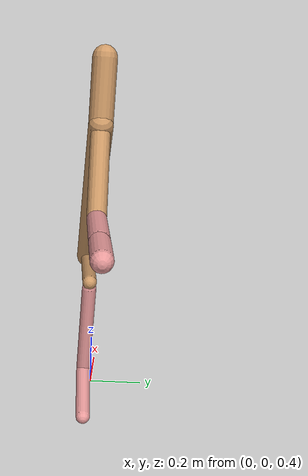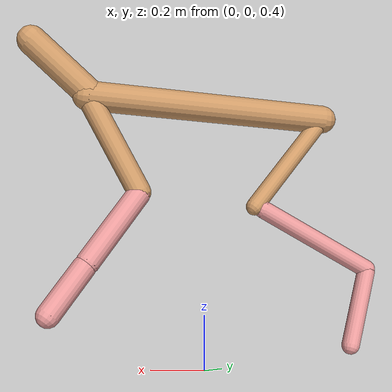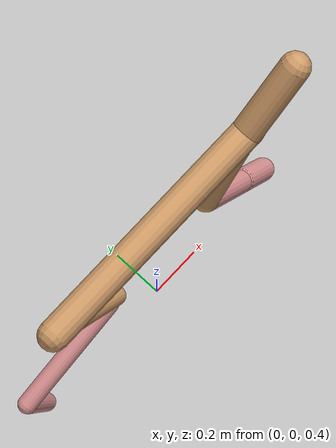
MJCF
<mujoco model="cheetah">
  <compiler angle="radian" coordinate="local" inertiafromgeom="true" settotalmass="14" />
  <default>
    <joint armature=".1" damping=".01" limited="true" solimplimit="0 .8 .03" solreflimit=".02 1" stiffness="8" />
    <geom conaffinity="0" condim="3" contype="1" friction="0.8 .1 .1" rgba="0.8 0.6 .4 1" solimp="0.0 0.8 0.01" solref="0.02 1" />
    <motor ctrllimited="true" ctrlrange="-1 1" />
  </default>
  <size nstack="300000" nuser_geom="1" />
  <option gravity="0 0 -9.81" timestep="0.01" />
  <worldbody>
    <body name="torso" pos="0.0 0.0 1.4052789622370976">
      <joint armature="0" axis="1 0 0" damping="0" limited="false" name="ignorex" pos="0 0 0" stiffness="0" type="slide" />
      <joint armature="0" axis="0 0 1" damping="0" limited="false" name="ignorez" pos="0 0 0" stiffness="0" type="slide" />
      <joint armature="0" axis="0 1 0" damping="0" limited="false" name="ignorey" pos="0 0 0" stiffness="0" type="hinge" />
      <geom fromto="-0.5 0.0 0.0 0.4583617749822097 0.0 0.0" name="torso" size="0.05612391723399142" type="capsule" />
      <geom axisangle="0 1 0 .87" name="head" pos="0.5583617749822097 0.0 0.1" size="0.05549270961134114 0.15" type="capsule" />

      <body name="bthigh" pos="-.5 0 0">
        <joint axis="0 1 0" damping="6" name="bthigh" pos="0 0 0" range="-.52 1.05" stiffness="240" type="hinge" />
        <geom axisangle="0 1 0 -3.8" name="bthigh" pos="0.15284097037130936 0.0 -0.19869326148270217" size="0.03466311076288304 0.2316656351901518" type="capsule" />
        <body name="bshin" pos="0.2656819407426187 0.0 -0.3873865229654043">
          <joint axis="0 1 0" damping="4.5" name="bshin" pos="0 0 0" range="-.785 .785" stiffness="180" type="hinge" />
          <geom axisangle="0 1 0 -2.03" name="bshin" pos="-0.2201890696269148 0.0 -0.1100945348134574" rgba="0.9 0.6 0.6 1" size="0.03466311076288304 0.23965410536912257" type="capsule" />
          <body name="bfoot" pos="-0.4403781392538296 0.0 -0.2201890696269148">
            <joint axis="0 1 0" damping="3" name="bfoot" pos="0 0 0" range="-.4 .785" stiffness="120" type="hinge" />
            <geom axisangle="0 1 0 -.27" name="bfoot" pos="0.04660044616793738 0.0 -0.15067477594299755" rgba="0.9 0.6 0.6 1" size="0.03466311076288304 0.15018323936465014" type="capsule" />
            <inertial mass="10" />
          </body>
        </body>
      </body>
      <body name="fthigh" pos="0.45836177498220976 0.0 0.0">
        <joint axis="0 1 0" damping="4.5" name="fthigh" pos="0 0 0" range="-1.5 0.8" stiffness="180" type="hinge" />
        <geom axisangle="0 1 0 .52" name="fthigh" pos="-0.10581728038433785 0.0 -0.18140105208743632" size="0.04423841557178246 0.20408422308483326" type="capsule" />
        <body name="fshin" pos="-0.2116345607686757 0.0 -0.36280210417487263">
          <joint axis="0 1 0" damping="3" name="fshin" pos="0 0 0" range="-1.2 1.1" stiffness="120" type="hinge" />
          <geom axisangle="0 1 0 -.6" name="fshin" pos="0.09817014256552409 0.0 -0.13592788970611028" rgba="0.9 0.6 0.6 1" size="0.04423841557178246 0.16265359133076934" type="capsule" />
          <body name="ffoot" pos="0.19634028513104818 0.0 -0.27185577941222056">
            <joint axis="0 1 0" damping="1.5" name="ffoot" pos="0 0 0" range="-3.1 -0.3" stiffness="60" type="hinge" />
            <geom axisangle="0 1 0 -.6" name="ffoot" pos="0.06523122802933991 0.0 -0.10147079915675097" rgba="0.9 0.6 0.6 1" size="0.04423841557178246 0.10741274899201751" type="capsule" />
            <inertial mass="10" />
          </body>
        </body>
      </body>
    </body>
  </worldbody>
  <actuator>
    <motor gear="120" joint="bthigh" name="bthigh" />
    <motor gear="90" joint="bshin" name="bshin" />
    <motor gear="60" joint="bfoot" name="bfoot" />
    <motor gear="120" joint="fthigh" name="fthigh" />
    <motor gear="60" joint="fshin" name="fshin" />
    <motor gear="30" joint="ffoot" name="ffoot" />
  </actuator>
</mujoco>
